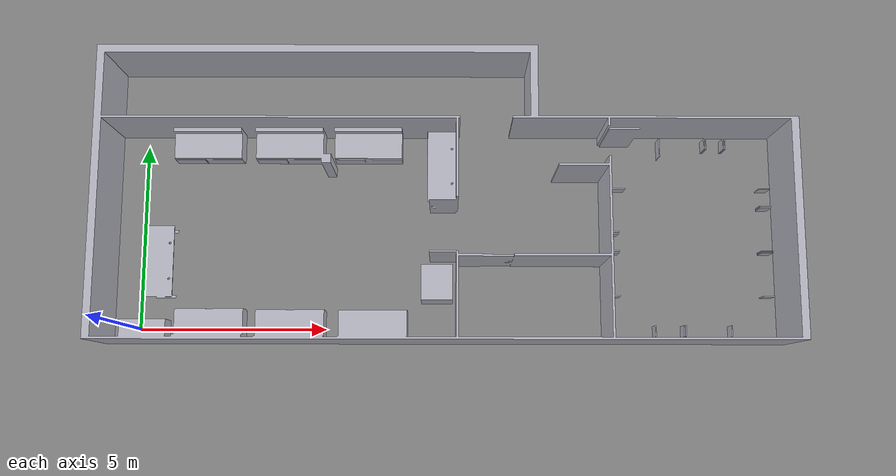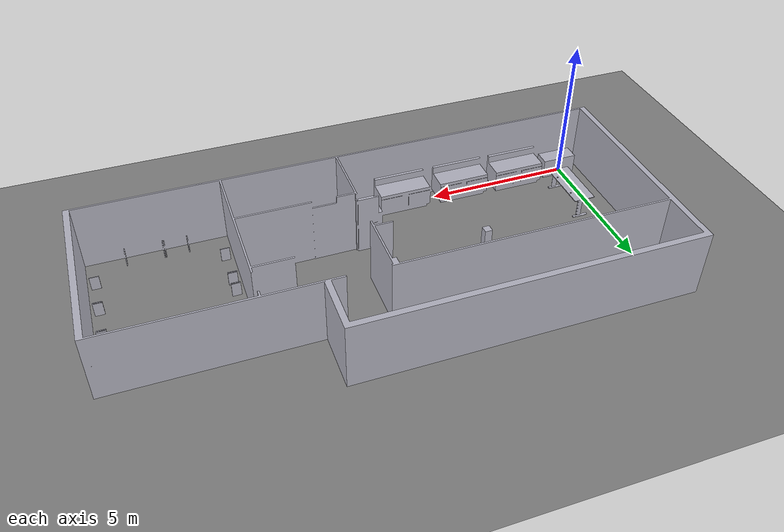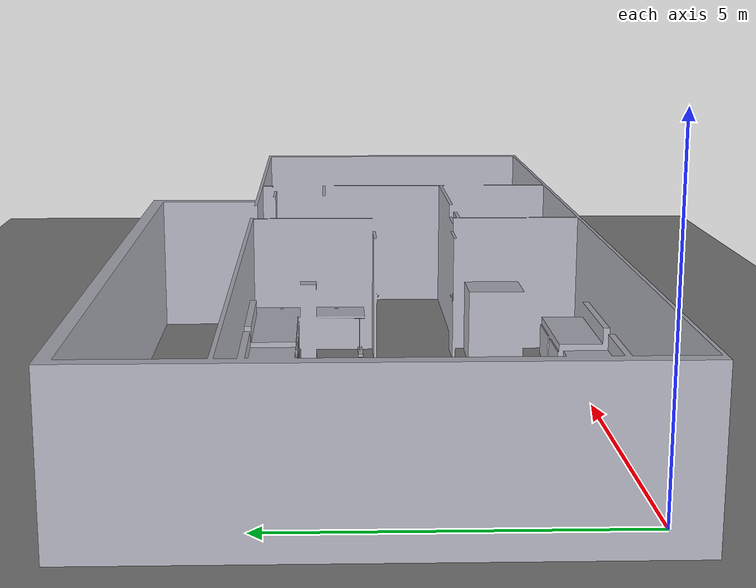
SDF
<?xml version="1.0" ?>
<sdf version="1.10">
  <world name="mezanino_graco">

    <!-- Plugins de sistema obrigatórios -->
    <plugin filename="gz-sim-physics-system"
            name="gz::sim::systems::Physics"/>
    <plugin filename="gz-sim-user-commands-system"
            name="gz::sim::systems::UserCommands"/>
    <plugin filename="gz-sim-scene-broadcaster-system"
            name="gz::sim::systems::SceneBroadcaster"/>
    <!-- Sensores (necessário para o LiDAR renderizar leituras) -->
    <plugin filename="gz-sim-sensors-system"
            name="gz::sim::systems::Sensors">
      <render_engine>ogre2</render_engine>
    </plugin>

    <gravity>0 0 -9.8</gravity>

    <!-- Luz ambiente da cena: sem isto a malha sem material fica
         "estourada" de branco. Ajuste o ambient se quiser mais/menos claro. -->
    <scene>
      <ambient>0.4 0.4 0.4 1</ambient>
      <background>0.7 0.7 0.7 1</background>
      <shadows>true</shadows>
    </scene>

    <!-- Luz solar -->
    <light type="directional" name="sun">
      <cast_shadows>true</cast_shadows>
      <pose>0 0 10 0 0 0</pose>
      <diffuse>0.8 0.8 0.8 1</diffuse>
      <specular>0.2 0.2 0.2 1</specular>
      <direction>-0.5 0.1 -0.9</direction>
    </light>

    <!-- Chão de referência, ajuda a perceber a orientação correta -->
    <model name="ground_plane">
      <static>true</static>
      <link name="link">
        <collision name="collision">
          <geometry><plane><normal>0 0 1</normal><size>100 100</size></plane></geometry>
        </collision>
        <visual name="visual">
          <geometry><plane><normal>0 0 1</normal><size>100 100</size></plane></geometry>
          <material>
            <ambient>0.3 0.3 0.3 1</ambient>
            <diffuse>0.5 0.5 0.5 1</diffuse>
          </material>
        </visual>
      </link>
    </model>

    <model name="mezanino_graco">
      <static>true</static>
      <pose>-0.91 -0.38 0   1.5708 0 0</pose>
      <link name="link">
        <collision name="collision">
          <geometry>
            <mesh>
              <uri>meshes/mezanino_graco.stl</uri>
              <scale>0.01 0.01 0.01</scale>
            </mesh>
          </geometry>
        </collision>
        <visual name="visual">
          <geometry>
            <mesh>
              <uri>meshes/mezanino_graco.stl</uri>
              <scale>0.01 0.01 0.01</scale>
            </mesh>
          </geometry>
          <material>
            <ambient>0.5 0.5 0.55 1</ambient>
            <diffuse>0.7 0.7 0.75 1</diffuse>
            <specular>0.1 0.1 0.1 1</specular>
          </material>
        </visual>
      </link>
    </model>

  </world>
</sdf>
